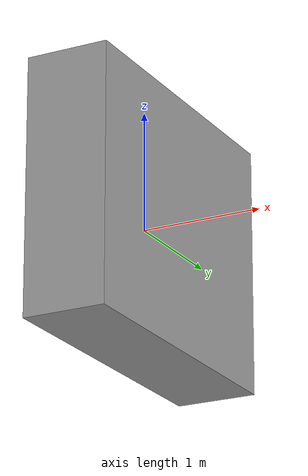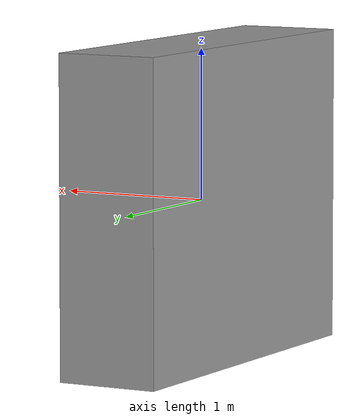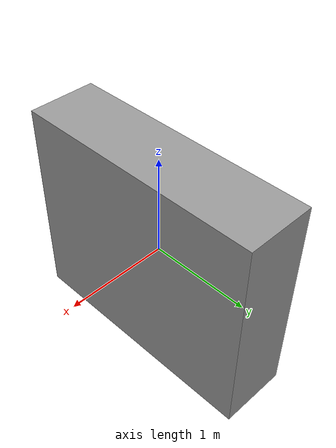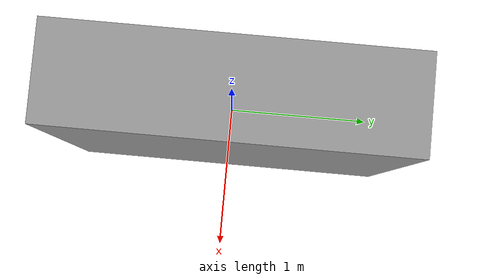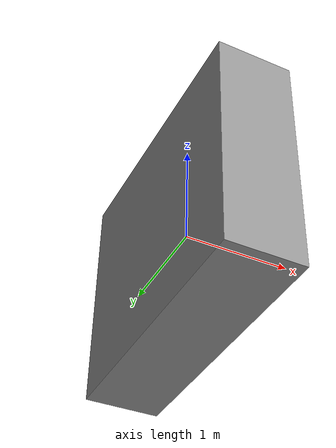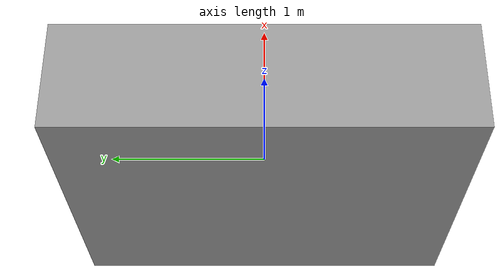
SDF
<?xml version='1.0'?>
<sdf version='1.6'>
  <model name='metal_two_cabinets'>
    <link name='link_0'>
      <inertial>
        <mass>6.90915</mass>
        <inertia>
          <ixx>9.92803</ixx>
          <ixy>0</ixy>
          <ixz>0</ixz>
          <iyy>8.50819</iyy>
          <iyz>0</iyz>
          <izz>2.57136</izz>
        </inertia>
        <pose>0 0 0 0 -0 0</pose>
      </inertial>
      <pose>0 0 0 0 -0 0</pose>
      <gravity>1</gravity>
      <self_collide>0</self_collide>
      <kinematic>0</kinematic>
      <enable_wind>0</enable_wind>
      <visual name='visual'>
        <pose>0 0 0 0 -0 0</pose>
        <geometry>
          <box>
            <size>0.68 2.5 2.1</size>
          </box>
        </geometry>
        <material>
          <lighting>1</lighting>
          <script>
            <uri>file://media/materials/scripts/gazebo.material</uri>
            <name>Gazebo/Grey</name>
          </script>
          <shader type='pixel'>
            <normal_map>__default__</normal_map>
          </shader>
          <ambient>0.333 0.341 0.325 1</ambient>
          <diffuse>0.333 0.341 0.325 1</diffuse>
          <specular>0.333 0.341 0.325 1</specular>
          <emissive>0.333 0.341 0.325 1</emissive>
        </material>
        <transparency>0</transparency>
        <cast_shadows>1</cast_shadows>
      </visual>
      <collision name='collision'>
        <laser_retro>0</laser_retro>
        <max_contacts>10</max_contacts>
        <pose>0 0 0 0 -0 0</pose>
        <geometry>
          <box>
            <size>0.68 2.5 2.1</size>
          </box>
        </geometry>
        <surface>
          <friction>
            <ode>
              <mu>100</mu>
              <mu2>50</mu2>
              <fdir1>0 0 0</fdir1>
              <slip1>0</slip1>
              <slip2>0</slip2>
            </ode>
            <torsional>
              <coefficient>1</coefficient>
              <patch_radius>0</patch_radius>
              <surface_radius>0</surface_radius>
              <use_patch_radius>1</use_patch_radius>
              <ode>
                <slip>0</slip>
              </ode>
            </torsional>
          </friction>
          <bounce>
            <restitution_coefficient>0</restitution_coefficient>
            <threshold>1e+06</threshold>
          </bounce>
          <contact>
            <collide_without_contact>0</collide_without_contact>
            <collide_without_contact_bitmask>1</collide_without_contact_bitmask>
            <collide_bitmask>1</collide_bitmask>
            <ode>
              <soft_cfm>0</soft_cfm>
              <soft_erp>0.2</soft_erp>
              <kp>1e+13</kp>
              <kd>1</kd>
              <max_vel>0.01</max_vel>
              <min_depth>0</min_depth>
            </ode>
            <bullet>
              <split_impulse>1</split_impulse>
              <split_impulse_penetration_threshold>-0.01</split_impulse_penetration_threshold>
              <soft_cfm>0</soft_cfm>
              <soft_erp>0.2</soft_erp>
              <kp>1e+13</kp>
              <kd>1</kd>
            </bullet>
          </contact>
        </surface>
      </collision>
    </link>
    <static>0</static>
    <allow_auto_disable>1</allow_auto_disable>
  </model>
</sdf>
